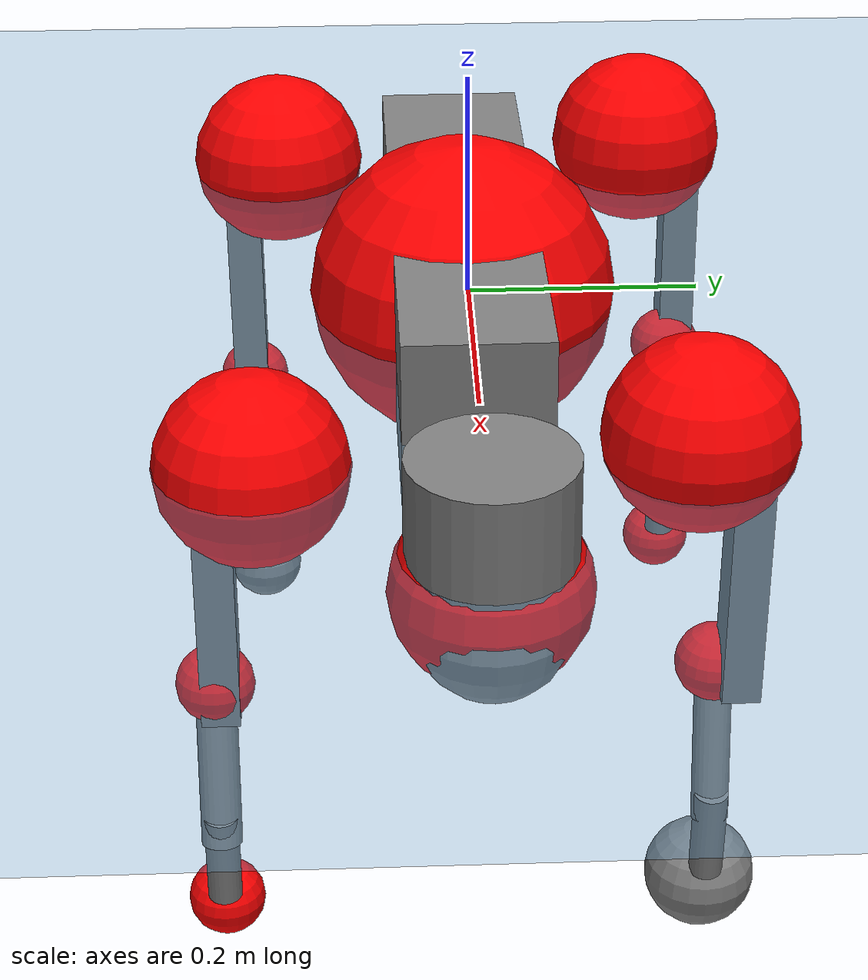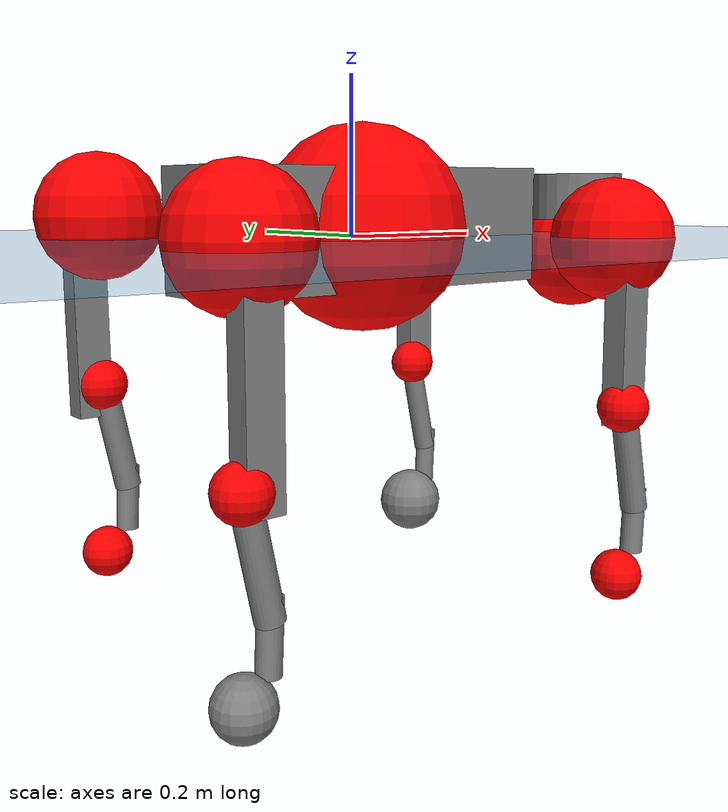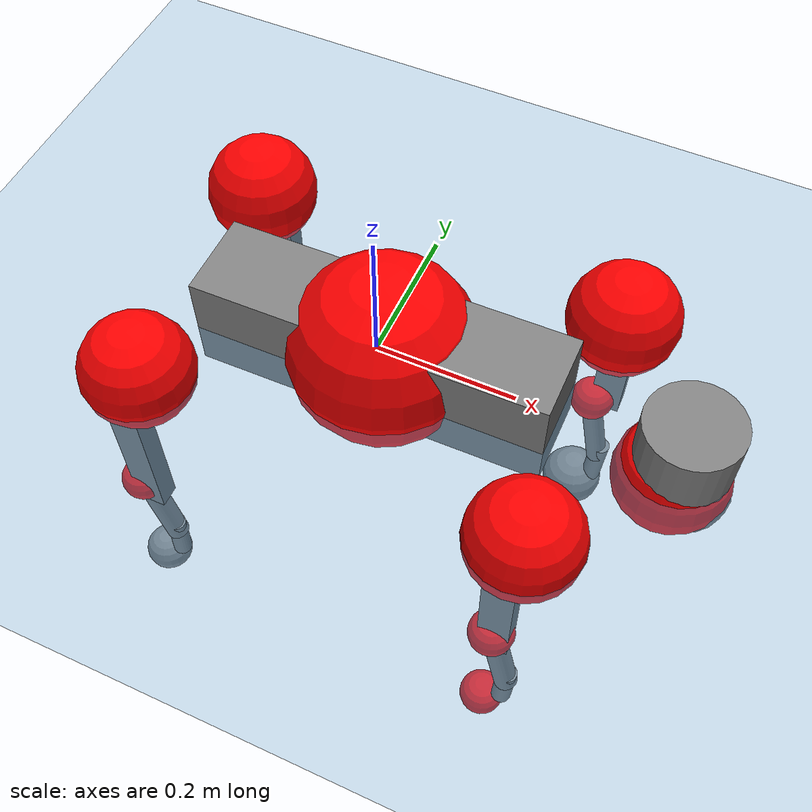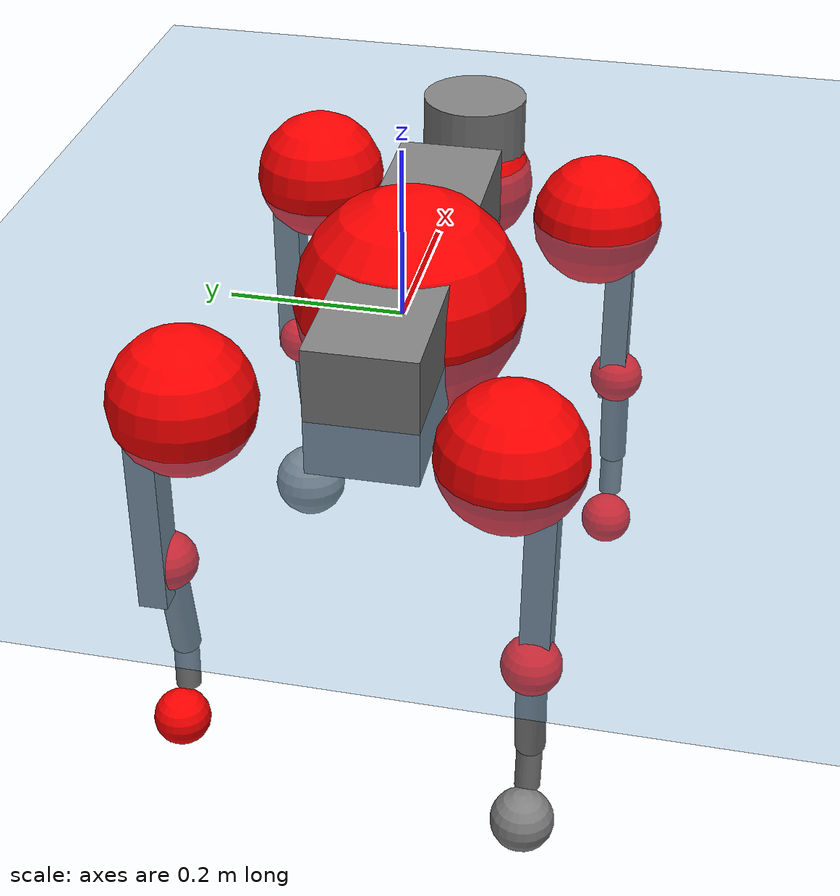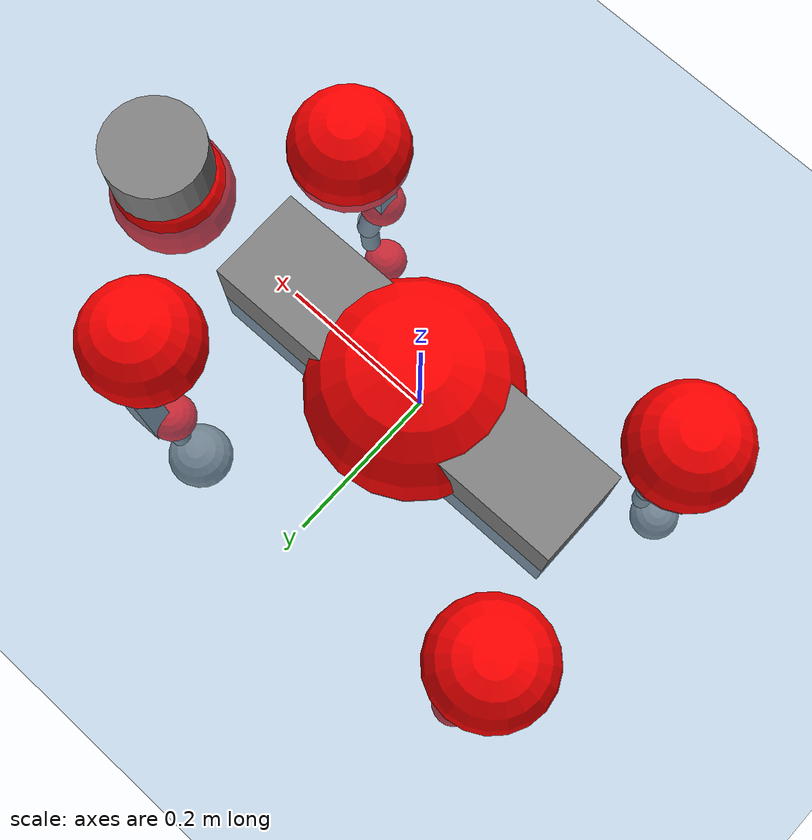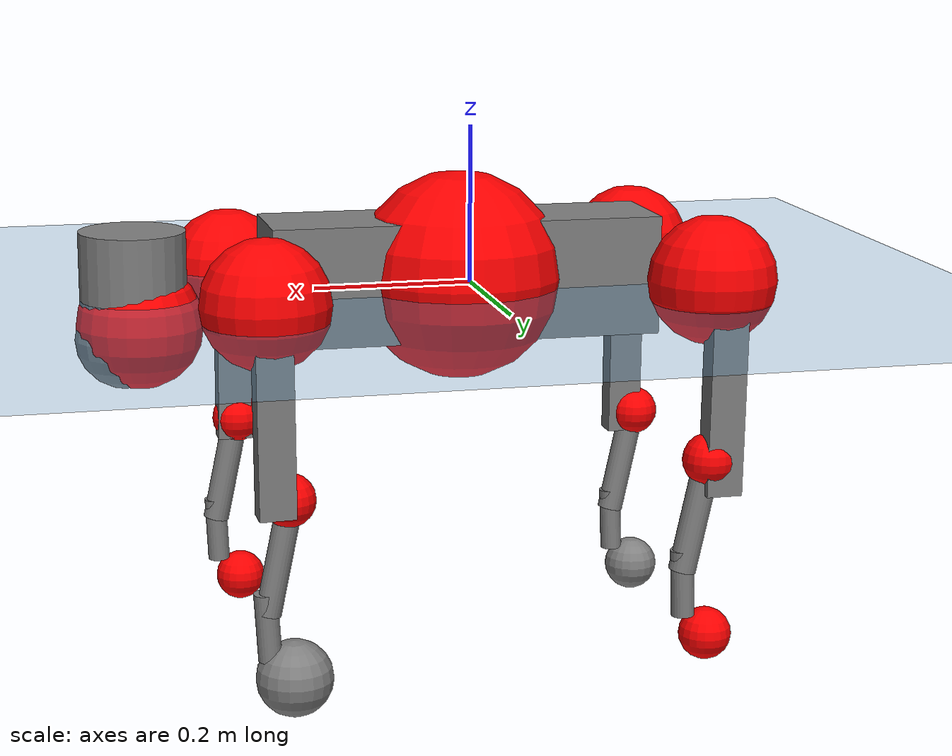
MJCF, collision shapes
<mujoco model="go2">
  <compiler angle="radian" assetdir="assets" balanceinertia="true" inertiafromgeom="false"/>

  <option timestep="0.005" density="1.2" viscosity="2e-05"/>

  <size nkey="1"/>

  <visual>
    <quality shadowsize="8192"/>
    <map shadowclip="0.5"/>
  </visual>

  <default>
    <default class="/">
      <geom contype="0" conaffinity="0" group="1" solref="-1000 -80"/>
      <site size="0.01 0.005 0.005" group="5"/>
      <general forcelimited="true" biastype="affine" gainprm="20" biasprm="0 -20 -0.5"/>
      <default class="go2">
        <joint armature="0.01" damping="0.01" frictionloss="0.2"/>
        <geom condim="1" margin="0.001"/>
        <default class="visual">
          <geom type="mesh" group="2"/>
        </default>
        <default class="collision">
          <geom group="3"/>
          <default class="foot">
            <geom size="0.022 0 0" condim="6" priority="1" friction="0.8 0.02 0.01" solimp="0.015 1 0.022"/>
          </default>
        </default>
        <default class="reward_collision_sphere">
          <geom group="5" rgba="1 0 0 1"/>
        </default>
      </default>
    </default>
  </default>

  <asset>
    <texture type="skybox" colorspace="auto" name="//unnamed_texture_0" builtin="gradient" rgb1="0.95 0.95 0.95" rgb2="0.95 0.95 0.95" width="100" height="600"/>
    <texture type="2d" colorspace="auto" name="texplane" builtin="checker" rgb1="0.345 0.575 0.748" rgb2="0.345 0.575 0.748" markrgb="1 1 1" width="512" height="512"/>
    <material name="MatPlane" class="/" texture="texplane" texuniform="true" texrepeat="2 2" specular="0.9"/>
    <material name="metal" class="/" rgba="0.9 0.95 0.95 1"/>
    <material name="black" class="/" rgba="0 0 0 1"/>
    <material name="white" class="/"/>
    <material name="gray" class="/" rgba="0.671705 0.692426 0.77427 1"/>
    <mesh name="base_0" class="/" file="base_0.obj"/>
    <mesh name="base_1" class="/" file="base_1.obj"/>
    <mesh name="base_2" class="/" file="base_2.obj"/>
    <mesh name="base_3" class="/" file="base_3.obj"/>
    <mesh name="base_4" class="/" file="base_4.obj"/>
    <mesh name="hip_0" class="/" file="hip_0.obj"/>
    <mesh name="hip_1" class="/" file="hip_1.obj"/>
    <mesh name="thigh_0" class="/" file="thigh_0.obj"/>
    <mesh name="thigh_1" class="/" file="thigh_1.obj"/>
    <mesh name="thigh_mirror_0" class="/" file="thigh_mirror_0.obj"/>
    <mesh name="thigh_mirror_1" class="/" file="thigh_mirror_1.obj"/>
    <mesh name="calf_0" class="/" file="calf_0.obj"/>
    <mesh name="calf_1" class="/" file="calf_1.obj"/>
    <mesh name="calf_mirror_0" class="/" file="calf_mirror_0.obj"/>
    <mesh name="calf_mirror_1" class="/" file="calf_mirror_1.obj"/>
    <mesh name="foot" class="/" file="foot.obj"/>
  </asset>

  <worldbody>
    <geom name="floor" class="/" size="100 100 0.125" type="plane" group="0" material="MatPlane"/>
    <light name="toplight_shadow" class="/" pos="0 0 5" dir="0.0990148 0.0990148 -0.990148" type="directional" ambient="0.04 0.04 0.04" diffuse="0.55 0.55 0.55" specular="0.12 0.12 0.12"/>
    <light name="toplight_fill" class="/" pos="0 0 5" dir="0.0990148 0.0990148 -0.990148" type="directional" castshadow="false" ambient="0.04 0.04 0.04" diffuse="0.3 0.3 0.3" specular="0.08 0.08 0.08"/>
    <body name="trunk" childclass="go2" pos="0.0133502 -0.00550811 0.0107462" quat="0.999981 -9.98163e-06 -0.00277666 0.00550173">
      <inertial pos="0.0415112 -0.011239 -0.00909387" quat="0.0369242 0.719031 -0.0642433 0.691016" mass="13.8719" diaginertia="0.476065 0.626931 0.0230955"/>
      <joint name="//unnamed_joint_0" type="free" armature="0" damping="0" frictionloss="0"/>
      <geom name="//unnamed_geom_1" class="visual" material="black" mesh="base_0"/>
      <geom name="//unnamed_geom_2" class="visual" material="black" mesh="base_1"/>
      <geom name="//unnamed_geom_3" class="visual" material="black" mesh="base_2"/>
      <geom name="//unnamed_geom_4" class="visual" material="white" mesh="base_3"/>
      <geom name="//unnamed_geom_5" class="visual" material="gray" mesh="base_4"/>
      <geom name="trunk_1" class="collision" size="0.24862 0.0617915 0.0753394" type="box"/>
      <geom name="trunk_2" class="collision" size="0.0660872 0.0594785" pos="0.412681 0 0.0106452" type="cylinder"/>
      <geom name="trunk_3" class="collision" size="0.062122" pos="0.424265 0 -0.0638712"/>
      <geom name="//unnamed_geom_9" class="reward_collision_sphere" size="0.132174"/>
      <geom name="//unnamed_geom_10" class="reward_collision_sphere" size="0.0793046" pos="0.405441 0 -0.0479034"/>
      <site name="imu" pos="-0.093803 0.0930735 0.0893424" size="0.0132174"/>
      <camera name="track" pos="0 -2.90541 0" quat="0.707107 0.707107 0 0" mode="trackcom"/>
      <camera name="ego_camera" pos="0.451778 0 0.0479034" quat="-0.5 -0.5 0.5 0.5"/>
      <body name="FL_hip" pos="0.277004 0.070313 0.00849869" quat="0.999959 -0.00465497 0.00662313 0.00415073">
        <inertial pos="0.00309814 -0.000962743 0.00741855" quat="0.481134 0.552858 0.501243 0.460014" mass="1.2471" diaginertia="0.00439467 0.00298583 0.000447602"/>
        <joint name="FL_hip_joint" pos="0 0 0" axis="0.998404 -0.00159484 -0.0564501" stiffness="0.0218773" range="-1.37732 1.06046" armature="0.00341077" damping="0" frictionloss="0.33931"/>
        <geom name="//unnamed_geom_11" class="visual" material="metal" mesh="hip_0"/>
        <geom name="//unnamed_geom_12" class="visual" material="gray" mesh="hip_1"/>
        <geom name="//unnamed_geom_13" class="collision" size="0.0608002 0.0264349" pos="0 0.116216 0" quat="0.707107 0.707107 0 0" type="cylinder"/>
        <geom name="//unnamed_geom_14" class="reward_collision_sphere" size="0.0793046" pos="0 0.101689 0"/>
        <body name="FL_thigh" pos="0.00105428 0.145364 0.00689255" quat="0.999999 -0.000184867 -0.000189288 0.00161616">
          <inertial pos="-0.00191482 -0.0157553 -0.0161427" quat="0.808114 0.086072 -0.00914461 0.582631" mass="2.73071" diaginertia="0.0334278 0.041132 0.0010554"/>
          <joint name="FL_thigh_joint" pos="0 0 0" axis="0.000629699 0.999532 0.0305741" range="-1.59704 3.13079" armature="0.0209905" damping="0.103324" frictionloss="0.272185"/>
          <geom name="//unnamed_geom_15" class="visual" material="metal" mesh="thigh_0"/>
          <geom name="//unnamed_geom_16" class="visual" material="gray" mesh="thigh_1"/>
          <geom name="//unnamed_geom_17" class="collision" size="0.140766 0.0161914 0.0224696" pos="0 0 -0.113371" quat="0.707107 0 0.707107 0" type="box"/>
          <body name="FL_calf" pos="-0.0187715 -0.0174374 -0.239781" quat="1 -0.000400332 -0.000452229 0.000327936">
            <inertial pos="0.0170636 0.01045 -0.163427" quat="0.713334 -0.0025038 -0.00505801 0.700801" mass="0.427189" diaginertia="0.00767554 0.00994807 6.9297e-05"/>
            <joint name="FL_calf_joint" pos="0 0 0" axis="0.00465455 0.999989 -0.000363302" stiffness="0.0899858" range="-2.97796 -0.522794" armature="0.0140255" damping="0.0136315" frictionloss="0.332721"/>
            <geom name="//unnamed_geom_18" class="visual" material="gray" mesh="calf_0"/>
            <geom name="//unnamed_geom_19" class="visual" material="black" mesh="calf_1"/>
            <geom name="FL_calf0" class="collision" size="0.0158609 0.0793046" pos="0.011584 0 -0.0638712" quat="0.994493 0 -0.104807 0" type="cylinder"/>
            <geom name="//unnamed_geom_21" class="collision" size="0.0145392 0.0429567" pos="0.0289601 0 -0.157549" quat="0.999688 0 0.0249974 0" type="cylinder"/>
            <geom name="//unnamed_geom_22" class="visual" pos="0 0 -0.226743" quat="1 0 0 0" material="black" mesh="foot"/>
            <geom name="FL_foot" class="foot" size="0.0478484" pos="-0.00289601 0 -0.226743"/>
            <geom name="//unnamed_geom_24" class="reward_collision_sphere" size="0.0330436"/>
            <geom name="//unnamed_geom_25" class="reward_collision_sphere" size="0.0330436" pos="-0.00289601 0 -0.226743"/>
            <site name="FL_foot" class="foot" pos="-0.00289601 0 -0.226743" size="0.0132174"/>
          </body>
        </body>
      </body>
      <body name="FR_hip" pos="0.26959 -0.0784222 -0.0170414" quat="0.999999 -0.00024511 0.00142989 -0.00016364">
        <inertial pos="-0.000303609 0.0100867 -0.00306275" quat="0.520543 0.456216 0.465876 0.551236" mass="1.24799" diaginertia="0.00502356 0.00266497 0.000475164"/>
        <joint name="FR_hip_joint" pos="0 0 0" axis="0.999988 0.00147751 -0.00457364" range="-1.32032 0.965862" armature="0.013494" damping="0.0121167" frictionloss="0.151401"/>
        <geom name="//unnamed_geom_26" class="visual" pos="0 3.38171e-09 1.45048e-07" quat="4.63268e-05 1 0 0" material="metal" mesh="hip_0"/>
        <geom name="//unnamed_geom_27" class="visual" pos="0 5.48215e-09 -3.5876e-07" quat="4.63268e-05 1 0 0" material="gray" mesh="hip_1"/>
        <geom name="//unnamed_geom_28" class="collision" size="0.0608002 0.0264349" pos="0 -0.116216 0" quat="0.707107 0.707107 0 0" type="cylinder"/>
        <geom name="//unnamed_geom_29" class="reward_collision_sphere" size="0.0793046" pos="0 -0.101689 0"/>
        <body name="FR_thigh" pos="-0.0103116 -0.135695 0.014443" quat="0.999992 -0.000246349 -0.00392063 -0.00114407">
          <inertial pos="-0.00428553 0.0325748 -0.0174689" quat="0.544504 -0.0794505 0.0119074 0.834902" mass="1.88013" diaginertia="0.0338988 0.0294719 0.000936485"/>
          <joint name="FR_thigh_joint" pos="0 0 0" axis="0.00363241 -0.99999 0.00242439" stiffness="0.0192119" range="-3.15008 1.28148" armature="0.0220739" damping="0.0256679" frictionloss="0.173851"/>
          <geom name="//unnamed_geom_30" class="visual" material="metal" mesh="thigh_mirror_0"/>
          <geom name="//unnamed_geom_31" class="visual" material="gray" mesh="thigh_mirror_1"/>
          <geom name="//unnamed_geom_32" class="collision" size="0.140766 0.0161914 0.0224696" pos="0 0 -0.113371" quat="0.707107 0 0.707107 0" type="box"/>
          <body name="FR_calf" pos="-0.00501985 -0.00434381 -0.229073" quat="1 -3.26047e-06 -3.95426e-06 7.81334e-07">
            <inertial pos="0.00280767 -0.00201287 -0.169505" quat="0.698987 0.0150083 0.0537459 0.712954" mass="0.811689" diaginertia="0.0103334 0.00901694 0.000108207"/>
            <joint name="FR_calf_joint" pos="0 0 0" axis="0.0400315 -0.999195 0.00265842" stiffness="0.0194991" range="0.785623 2.94359" armature="0.00437811" damping="0.0203386" frictionloss="0.259228"/>
            <geom name="//unnamed_geom_33" class="visual" material="gray" mesh="calf_mirror_0"/>
            <geom name="//unnamed_geom_34" class="visual" material="black" mesh="calf_mirror_1"/>
            <geom name="FR_calf0" class="collision" size="0.0171827 0.0793046" pos="0.01448 0 -0.0638712" quat="0.995004 0 -0.0998334 0" type="cylinder"/>
            <geom name="//unnamed_geom_36" class="collision" size="0.0145392 0.0429567" pos="0.0289601 0 -0.157549" quat="0.999688 0 0.0249974 0" type="cylinder"/>
            <geom name="//unnamed_geom_37" class="visual" pos="0 0 -0.226743" quat="1 0 0 0" material="black" mesh="foot"/>
            <geom name="FR_foot" class="foot" size="0.0197633" pos="-0.00289601 0 -0.226743"/>
            <geom name="//unnamed_geom_39" class="reward_collision_sphere" size="0.0330436"/>
            <geom name="//unnamed_geom_40" class="reward_collision_sphere" size="0.0330436" pos="-0.00289601 0 -0.226743"/>
            <site name="FR_foot" class="foot" pos="-0.00289601 0 -0.226743" size="0.0132174"/>
          </body>
        </body>
      </body>
      <body name="RL_hip" pos="-0.27383 0.0779618 0.0166383" quat="0.999998 -0.000187377 -0.00128284 0.00119142">
        <inertial pos="0.0056266 0.0070757 0.0162867" quat="0.510471 0.495277 0.513986 0.47952" mass="1.32323" diaginertia="0.00482113 0.00475766 0.000660523"/>
        <joint name="RL_hip_joint" pos="0 0 0" axis="-0.999996 -0.00242221 0.00112218" range="-1.41193 0.721459" armature="0.0123689" damping="0.0667636" frictionloss="0.0493906"/>
        <geom name="//unnamed_geom_41" class="visual" pos="-3.34076e-09 0 -6.54865e-07" quat="4.63268e-05 0 1 0" material="metal" mesh="hip_0"/>
        <geom name="//unnamed_geom_42" class="visual" pos="-5.41577e-09 0 -5.80772e-07" quat="4.63268e-05 0 1 0" material="gray" mesh="hip_1"/>
        <geom name="//unnamed_geom_43" class="collision" size="0.0608002 0.0264349" pos="0 0.116216 0" quat="0.707107 0.707107 0 0" type="cylinder"/>
        <geom name="//unnamed_geom_44" class="reward_collision_sphere" size="0.0793046" pos="0 0.101689 0"/>
        <body name="RL_thigh" pos="-0.00397201 0.146004 -0.00533465" quat="1 -0.00025856 0.000162299 -0.000139581">
          <inertial pos="0.0105315 -0.0383013 -0.0162554" quat="0.817551 0.0830593 0.0581537 0.566859" mass="2.52063" diaginertia="0.0404179 0.0319922 0.00127427"/>
          <joint name="RL_thigh_joint" pos="0 0 0" axis="-0.0760731 0.996842 0.0227624" stiffness="0.0419175" range="-0.199657 4.66529" armature="0.00705521" damping="0" frictionloss="0.29765"/>
          <geom name="//unnamed_geom_45" class="visual" material="metal" mesh="thigh_0"/>
          <geom name="//unnamed_geom_46" class="visual" material="gray" mesh="thigh_1"/>
          <geom name="//unnamed_geom_47" class="collision" size="0.140766 0.0161914 0.0224696" pos="0 0 -0.113371" quat="0.707107 0 0.707107 0" type="box"/>
          <body name="RL_calf" pos="0.0119601 -0.00977405 -0.212902" quat="0.999998 -0.000615973 0.0015629 -0.000657911">
            <inertial pos="-0.00237644 0.0110263 -0.163251" quat="0.738214 -0.057954 -0.00977595 0.672001" mass="0.640378" diaginertia="0.00944048 0.00818957 7.88908e-05"/>
            <joint name="RL_calf_joint" pos="0 0 0" axis="0.0507943 0.998504 0.0202277" stiffness="0.0934554" range="-2.89387 -0.833569" armature="0.00884346" damping="0" frictionloss="0.109637"/>
            <geom name="//unnamed_geom_48" class="visual" material="gray" mesh="calf_0"/>
            <geom name="//unnamed_geom_49" class="visual" material="black" mesh="calf_1"/>
            <geom name="RL_calf0" class="collision" size="0.0171827 0.0793046" pos="0.01448 0 -0.0638712" quat="0.995004 0 -0.0998334 0" type="cylinder"/>
            <geom name="//unnamed_geom_51" class="collision" size="0.0145392 0.0429567" pos="0.0289601 0 -0.157549" quat="0.999688 0 0.0249974 0" type="cylinder"/>
            <geom name="//unnamed_geom_52" class="visual" pos="0 0 -0.226743" quat="1 0 0 0" material="black" mesh="foot"/>
            <geom name="RL_foot" class="foot" size="0.0191226" pos="-0.00289601 0 -0.226743"/>
            <geom name="//unnamed_geom_54" class="reward_collision_sphere" size="0.0330436"/>
            <geom name="//unnamed_geom_55" class="reward_collision_sphere" size="0.0330436" pos="-0.00289601 0 -0.226743"/>
            <site name="RL_foot" class="foot" pos="-0.00289601 0 -0.226743" size="0.0132174"/>
          </body>
        </body>
      </body>
      <body name="RR_hip" pos="-0.28084 -0.059537 0.000399727" quat="0.99999 0.00343438 0.000612921 -0.00290133">
        <inertial pos="0.00502317 -0.0188793 0.0132098" quat="0.499778 0.497042 0.497335 0.505796" mass="1.67976" diaginertia="0.00740618 0.00509791 0.000798988"/>
        <joint name="RR_hip_joint" pos="0 0 0" axis="-0.999137 -0.0319887 -0.0264928" stiffness="0.0141337" range="-1.22804 1.34115" armature="0.0201354" damping="0.0818926" frictionloss="0.147442"/>
        <geom name="//unnamed_geom_56" class="visual" pos="3.34092e-09 3.38171e-09 -7.99914e-07" quat="2.14617e-09 4.63268e-05 4.63268e-05 -1" material="metal" mesh="hip_0"/>
        <geom name="//unnamed_geom_57" class="visual" pos="5.41536e-09 5.48215e-09 -2.22012e-07" quat="2.14617e-09 4.63268e-05 4.63268e-05 -1" material="gray" mesh="hip_1"/>
        <geom name="//unnamed_geom_58" class="collision" size="0.0608002 0.0264349" pos="0 -0.116216 0" quat="0.707107 0.707107 0 0" type="cylinder"/>
        <geom name="//unnamed_geom_59" class="reward_collision_sphere" size="0.0793046" pos="0 -0.101689 0"/>
        <body name="RR_thigh" pos="-0.00635515 -0.137961 -0.016982" quat="1 -0.000324876 -0.000223328 0.000386762">
          <inertial pos="0.00673639 0.0189869 -0.0347256" quat="0.554517 -0.018128 0.083716 0.827752" mass="3.74027" diaginertia="0.0392456 0.0474344 0.00116299"/>
          <joint name="RR_thigh_joint" pos="0 0 0" axis="-0.0211983 -0.998998 0.0394209" range="-4.19805 0.200421" armature="0.0105517" damping="0.00731062" frictionloss="0.462577"/>
          <geom name="//unnamed_geom_60" class="visual" material="metal" mesh="thigh_mirror_0"/>
          <geom name="//unnamed_geom_61" class="visual" material="gray" mesh="thigh_mirror_1"/>
          <geom name="//unnamed_geom_62" class="collision" size="0.140766 0.0161914 0.0224696" pos="0 0 -0.113371" quat="0.707107 0 0.707107 0" type="box"/>
          <body name="RR_calf" pos="-0.0172803 0.00219853 -0.228656" quat="0.999996 0.00205712 -0.00192019 -0.000877652">
            <inertial pos="0.000442221 0.00157478 -0.149413" quat="0.683562 -0.00770444 -0.00401848 0.72984" mass="0.758448" diaginertia="0.0119194 0.0115863 8.0089e-05"/>
            <joint name="RR_calf_joint" pos="0 0 0" axis="-0.051834 -0.998415 -0.0219425" stiffness="0.0666112" range="0.877027 2.48993" armature="0.0194887" damping="0.0894076" frictionloss="0.297599"/>
            <geom name="//unnamed_geom_63" class="visual" material="gray" mesh="calf_mirror_0"/>
            <geom name="//unnamed_geom_64" class="visual" material="black" mesh="calf_mirror_1"/>
            <geom name="RR_calf0" class="collision" size="0.0171827 0.0793046" pos="0.01448 0 -0.0638712" quat="0.995004 0 -0.0998334 0" type="cylinder"/>
            <geom name="//unnamed_geom_66" class="collision" size="0.0145392 0.0429567" pos="0.0289601 0 -0.157549" quat="0.999688 0 0.0249974 0" type="cylinder"/>
            <geom name="//unnamed_geom_67" class="visual" pos="0 0 -0.226743" quat="1 0 0 0" material="black" mesh="foot"/>
            <geom name="RR_foot" class="foot" size="0.0362588" pos="-0.00289601 0 -0.226743"/>
            <geom name="//unnamed_geom_69" class="reward_collision_sphere" size="0.0330436"/>
            <geom name="//unnamed_geom_70" class="reward_collision_sphere" size="0.0330436" pos="-0.00289601 0 -0.226743"/>
            <site name="RR_foot" class="foot" pos="-0.00289601 0 -0.226743" size="0.0132174"/>
          </body>
        </body>
      </body>
    </body>
  </worldbody>

  <contact>
    <pair class="/" geom1="floor" geom2="FL_foot" name="//unnamed_contact_0"/>
    <pair class="/" geom1="floor" geom2="FR_foot" name="//unnamed_contact_1"/>
    <pair class="/" geom1="floor" geom2="RL_foot" name="//unnamed_contact_2"/>
    <pair class="/" geom1="floor" geom2="RR_foot" name="//unnamed_contact_3"/>
  </contact>

  <actuator>
    <general name="FL_hip" class="/" joint="FL_hip_joint" forcerange="-24.2229 24.2229" gainprm="32.0462" biasprm="0 -32.0462 -0.398116"/>
    <general name="FL_thigh" class="/" joint="FL_thigh_joint" forcerange="-13.3655 13.3655" gainprm="32.0462" biasprm="0 -32.0462 -0.398116"/>
    <general name="FL_calf" class="/" joint="FL_calf_joint" forcerange="-97.0093 97.0093" gainprm="32.0462" biasprm="0 -32.0462 -0.398116"/>
    <general name="FR_hip" class="/" joint="FR_hip_joint" forcerange="-26.1629 26.1629" gainprm="32.0462" biasprm="0 -32.0462 -0.398116"/>
    <general name="FR_thigh" class="/" joint="FR_thigh_joint" forcerange="-17.2683 17.2683" gainprm="32.0462" biasprm="0 -32.0462 -0.398116"/>
    <general name="FR_calf" class="/" joint="FR_calf_joint" forcerange="-17.2636 17.2636" gainprm="32.0462" biasprm="0 -32.0462 -0.398116"/>
    <general name="RL_hip" class="/" joint="RL_hip_joint" forcerange="-11.8454 11.8454" gainprm="32.0462" biasprm="0 -32.0462 -0.398116"/>
    <general name="RL_thigh" class="/" joint="RL_thigh_joint" forcerange="-19.0921 19.0921" gainprm="32.0462" biasprm="0 -32.0462 -0.398116"/>
    <general name="RL_calf" class="/" joint="RL_calf_joint" forcerange="-54.8816 54.8816" gainprm="32.0462" biasprm="0 -32.0462 -0.398116"/>
    <general name="RR_hip" class="/" joint="RR_hip_joint" forcerange="-34.9232 34.9232" gainprm="32.0462" biasprm="0 -32.0462 -0.398116"/>
    <general name="RR_thigh" class="/" joint="RR_thigh_joint" forcerange="-52.7533 52.7533" gainprm="32.0462" biasprm="0 -32.0462 -0.398116"/>
    <general name="RR_calf" class="/" joint="RR_calf_joint" forcerange="-92.9654 92.9654" gainprm="32.0462" biasprm="0 -32.0462 -0.398116"/>
  </actuator>

  <sensor>
    <gyro site="imu" name="imu_angular_velocity"/>
    <velocimeter site="imu" name="imu_linear_velocity"/>
    <framelinvel objtype="site" objname="FL_foot" name="FL_foot_global_linear_velocity"/>
    <framelinvel objtype="site" objname="FR_foot" name="FR_foot_global_linear_velocity"/>
    <framelinvel objtype="site" objname="RL_foot" name="RL_foot_global_linear_velocity"/>
    <framelinvel objtype="site" objname="RR_foot" name="RR_foot_global_linear_velocity"/>
  </sensor>

  <keyframe>
    <key name="home" qpos="0 0 0.325 1 0 0 0 0.1 0.8 -1.5 -0.1 -0.8 1.5 -0.1 0.8 -1.5 0.1 -0.8 1.5"/>
  </keyframe>
</mujoco>
